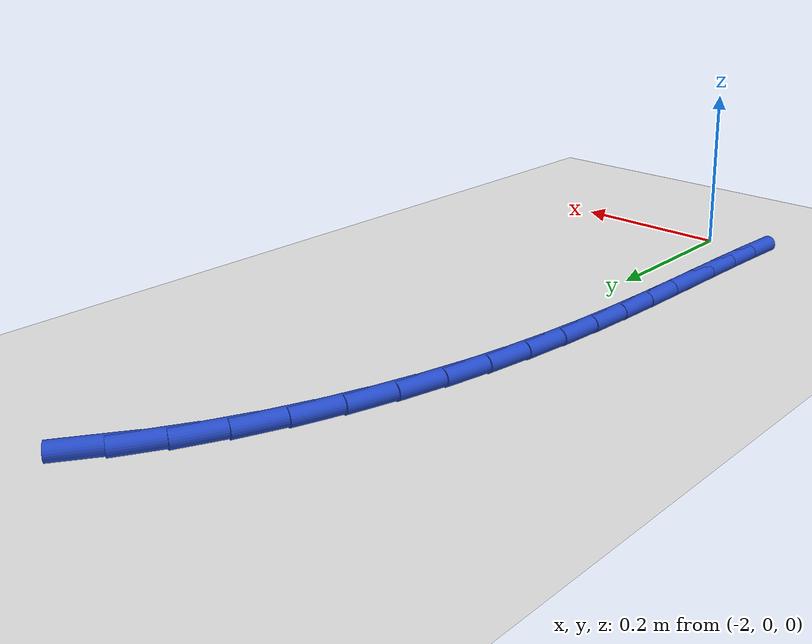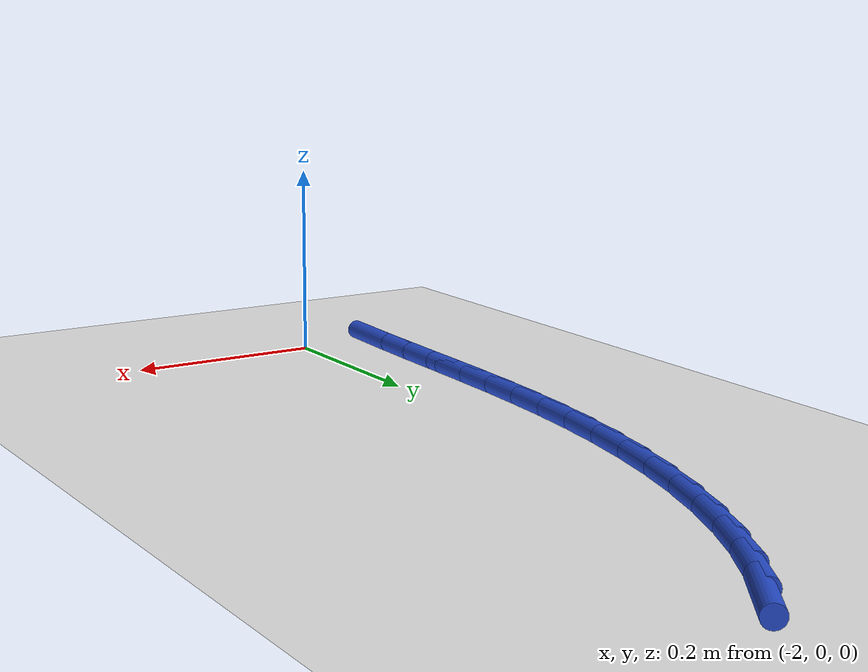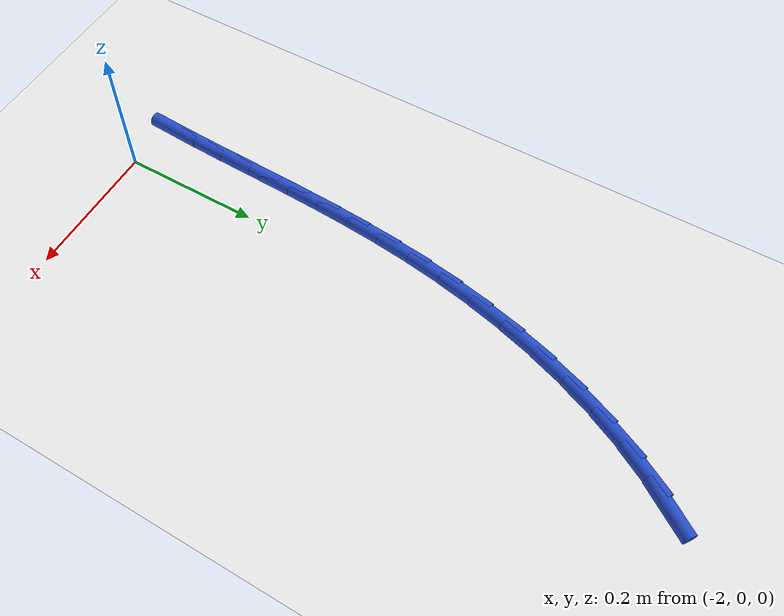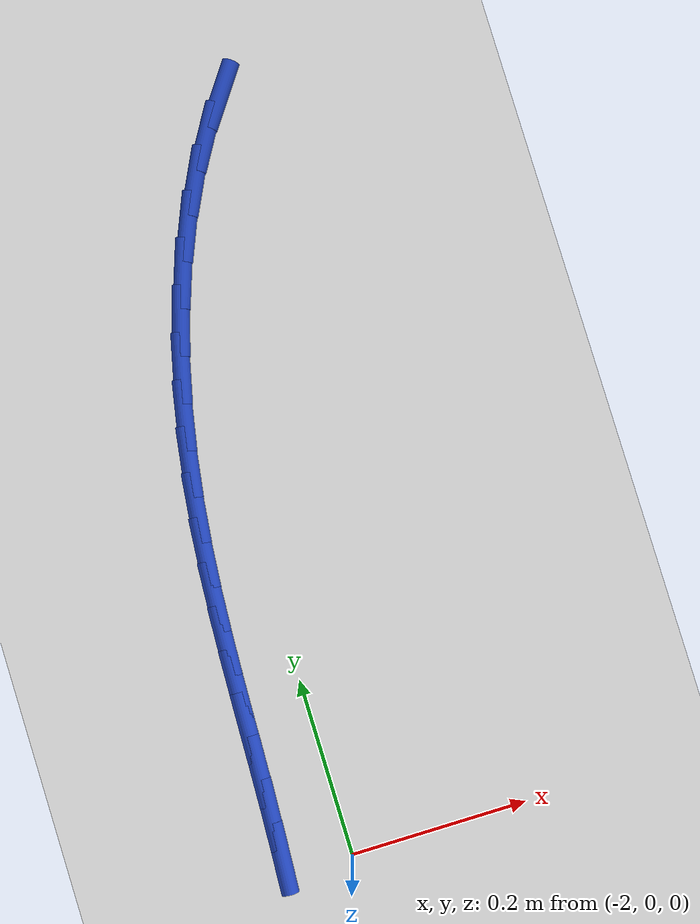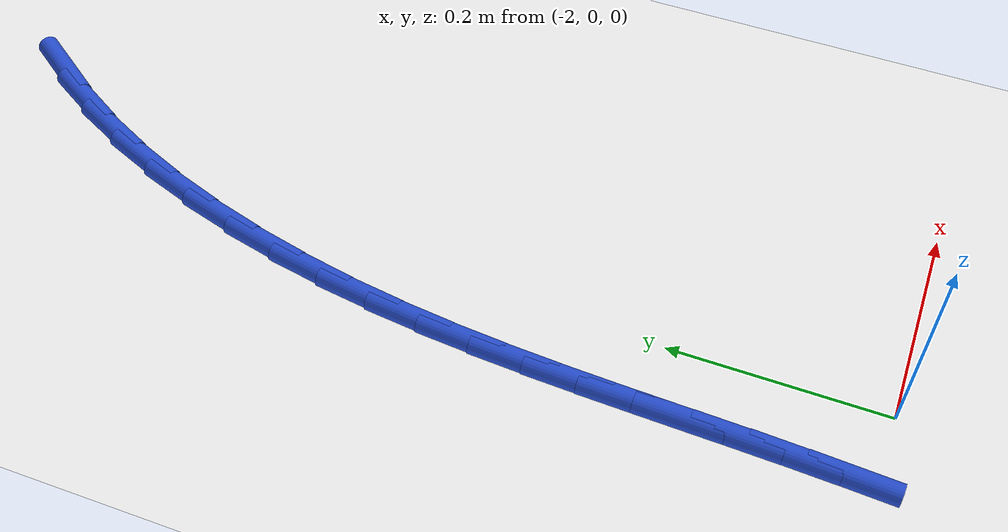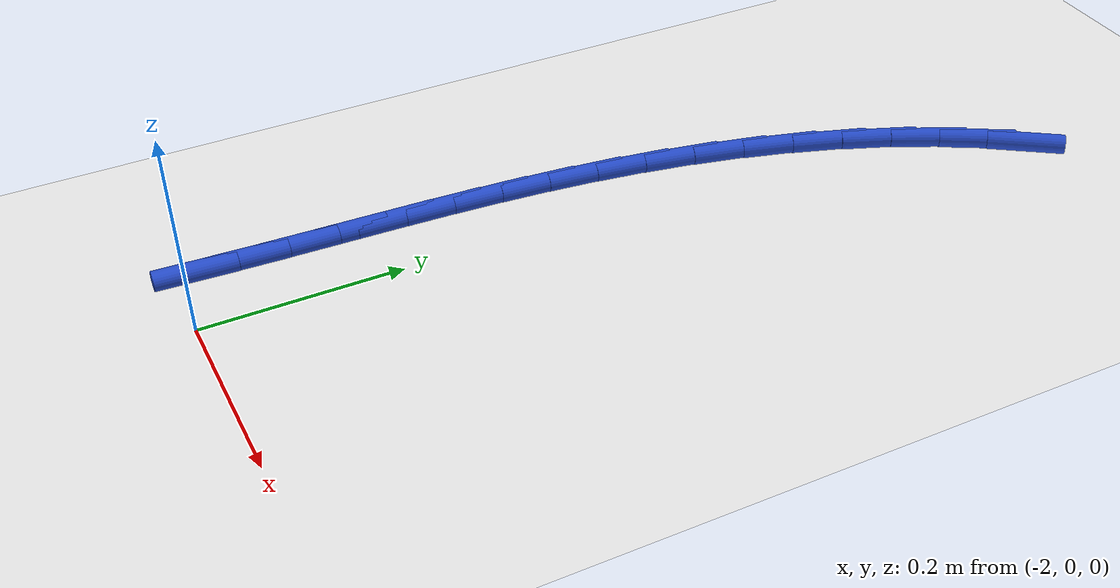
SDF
<sdf version="1.6">
 <world name="default">
  <model name="ground_plane">
   <static>1</static>
   <link name="link">
    <collision name="collision">
     <geometry><plane><normal>0 0 1</normal><size>100 100</size></plane></geometry>
     <surface><friction><ode><mu>100</mu><mu2>50</mu2></ode></friction></surface>
    </collision>
    <visual name="visual">
     <cast_shadows>0</cast_shadows>
     <geometry><plane><normal>0 0 1</normal><size>100 100</size></plane></geometry>
     <material>
      <script><uri>file://media/materials/scripts/gazebo.material</uri><name>Gazebo/WhiteGlow</name></script>
     </material>
    </visual>
   </link>
  </model>
  <model name="line">
   <link name="link_51">
    <pose>-1.8952875992482943 0.8510967188438283 0.01 0 1.57 0.9584471731648041</pose>
    <collision name="collision">
     <geometry><cylinder><radius>0.01</radius><length>0.08</length></cylinder></geometry>
    </collision>
    <visual name="visual">
     <material>
      <script><name>Gazebo/Blue</name><uri>file://media/materials/scripts/gazebo.material</uri></script>
     </material>
     <geometry><cylinder><radius>0.01</radius><length>0.08</length></cylinder></geometry>
    </visual>
   </link>
   <link name="link_52">
    <pose>-1.9240808682261983 0.8101052671861909 0.01 0 1.57 1.0423672182753734</pose>
    <collision name="collision">
     <geometry><cylinder><radius>0.01</radius><length>0.08</length></cylinder></geometry>
    </collision>
    <visual name="visual">
     <material>
      <script><name>Gazebo/Blue</name><uri>file://media/materials/scripts/gazebo.material</uri></script>
     </material>
     <geometry><cylinder><radius>0.01</radius><length>0.08</length></cylinder></geometry>
    </visual>
   </link>
   <link name="link_53">
    <pose>-1.9498663151922533 0.7659376423045526 0.01 0 1.57 1.1160397091845151</pose>
    <collision name="collision">
     <geometry><cylinder><radius>0.01</radius><length>0.08</length></cylinder></geometry>
    </collision>
    <visual name="visual">
     <material>
      <script><name>Gazebo/Blue</name><uri>file://media/materials/scripts/gazebo.material</uri></script>
     </material>
     <geometry><cylinder><radius>0.01</radius><length>0.08</length></cylinder></geometry>
    </visual>
   </link>
   <link name="link_54">
    <pose>-1.9727288115088355 0.7191778706933715 0.01 0 1.57 1.1811799230710796</pose>
    <collision name="collision">
     <geometry><cylinder><radius>0.01</radius><length>0.08</length></cylinder></geometry>
    </collision>
    <visual name="visual">
     <material>
      <script><name>Gazebo/Blue</name><uri>file://media/materials/scripts/gazebo.material</uri></script>
     </material>
     <geometry><cylinder><radius>0.01</radius><length>0.08</length></cylinder></geometry>
    </visual>
   </link>
   <link name="link_55">
    <pose>-1.9927532285383216 0.6704099788471052 0.01 0 1.57 1.2393846544069853</pose>
    <collision name="collision">
     <geometry><cylinder><radius>0.01</radius><length>0.08</length></cylinder></geometry>
    </collision>
    <visual name="visual">
     <material>
      <script><name>Gazebo/Blue</name><uri>file://media/materials/scripts/gazebo.material</uri></script>
     </material>
     <geometry><cylinder><radius>0.01</radius><length>0.08</length></cylinder></geometry>
    </visual>
   </link>
   <link name="link_56">
    <pose>-2.010024437643088 0.6202179932602125 0.01 0 1.57 1.2920929670523353</pose>
    <collision name="collision">
     <geometry><cylinder><radius>0.01</radius><length>0.08</length></cylinder></geometry>
    </collision>
    <visual name="visual">
     <material>
      <script><name>Gazebo/Blue</name><uri>file://media/materials/scripts/gazebo.material</uri></script>
     </material>
     <geometry><cylinder><radius>0.01</radius><length>0.08</length></cylinder></geometry>
    </visual>
   </link>
   <link name="link_57">
    <pose>-2.0246273101855112 0.569185940427151 0.01 0 1.57 1.3405996503066306</pose>
    <collision name="collision">
     <geometry><cylinder><radius>0.01</radius><length>0.08</length></cylinder></geometry>
    </collision>
    <visual name="visual">
     <material>
      <script><name>Gazebo/Blue</name><uri>file://media/materials/scripts/gazebo.material</uri></script>
     </material>
     <geometry><cylinder><radius>0.01</radius><length>0.08</length></cylinder></geometry>
    </visual>
   </link>
   <link name="link_58">
    <pose>-2.0366467175279683 0.5178978468423796 0.01 0 1.57 1.385920003829943</pose>
    <collision name="collision">
     <geometry><cylinder><radius>0.01</radius><length>0.08</length></cylinder></geometry>
    </collision>
    <visual name="visual">
     <material>
      <script><name>Gazebo/Blue</name><uri>file://media/materials/scripts/gazebo.material</uri></script>
     </material>
     <geometry><cylinder><radius>0.01</radius><length>0.08</length></cylinder></geometry>
    </visual>
   </link>
   <link name="link_59">
    <pose>-2.046184398417875 0.46689743359977226 0.01 0 1.57 1.4270324355167208</pose>
    <collision name="collision">
     <geometry><cylinder><radius>0.01</radius><length>0.08</length></cylinder></geometry>
    </collision>
    <visual name="visual">
     <material>
      <script><name>Gazebo/Blue</name><uri>file://media/materials/scripts/gazebo.material</uri></script>
     </material>
     <geometry><cylinder><radius>0.01</radius><length>0.08</length></cylinder></geometry>
    </visual>
   </link>
   <link name="link_60">
    <pose>-2.0535024731172316 0.4163451827092194 0.01 0 1.57 1.4625729472241138</pose>
    <collision name="collision">
     <geometry><cylinder><radius>0.01</radius><length>0.08</length></cylinder></geometry>
    </collision>
    <visual name="visual">
     <material>
      <script><name>Gazebo/Blue</name><uri>file://media/materials/scripts/gazebo.material</uri></script>
     </material>
     <geometry><cylinder><radius>0.01</radius><length>0.08</length></cylinder></geometry>
    </visual>
   </link>
   <link name="link_61">
    <pose>-2.058951770782168 0.36618960215470947 0.01 0 1.57 1.4920181506602441</pose>
    <collision name="collision">
     <geometry><cylinder><radius>0.01</radius><length>0.08</length></cylinder></geometry>
    </collision>
    <visual name="visual">
     <material>
      <script><name>Gazebo/Blue</name><uri>file://media/materials/scripts/gazebo.material</uri></script>
     </material>
     <geometry><cylinder><radius>0.01</radius><length>0.08</length></cylinder></geometry>
    </visual>
   </link>
   <link name="link_62">
    <pose>-2.0628840578135423 0.3163769603303837 0.01 0 1.57 1.5149809582141855</pose>
    <collision name="collision">
     <geometry><cylinder><radius>0.01</radius><length>0.08</length></cylinder></geometry>
    </collision>
    <visual name="visual">
     <material>
      <script><name>Gazebo/Blue</name><uri>file://media/materials/scripts/gazebo.material</uri></script>
     </material>
     <geometry><cylinder><radius>0.01</radius><length>0.08</length></cylinder></geometry>
    </visual>
   </link>
   <link name="link_63">
    <pose>-2.065651100612216 0.2668535256303827 0.01 0 1.57 1.531181318369974</pose>
    <collision name="collision">
     <geometry><cylinder><radius>0.01</radius><length>0.08</length></cylinder></geometry>
    </collision>
    <visual name="visual">
     <material>
      <script><name>Gazebo/Blue</name><uri>file://media/materials/scripts/gazebo.material</uri></script>
     </material>
     <geometry><cylinder><radius>0.01</radius><length>0.08</length></cylinder></geometry>
    </visual>
   </link>
   <link name="link_64">
    <pose>-2.0676046655790468 0.21756556644884792 0.01 0 1.57 1.5404255313347133</pose>
    <collision name="collision">
     <geometry><cylinder><radius>0.01</radius><length>0.08</length></cylinder></geometry>
    </collision>
    <visual name="visual">
     <material>
      <script><name>Gazebo/Blue</name><uri>file://media/materials/scripts/gazebo.material</uri></script>
     </material>
     <geometry><cylinder><radius>0.01</radius><length>0.08</length></cylinder></geometry>
    </visual>
   </link>
   <link name="link_65">
    <pose>-2.069096519114894 0.16845935117992009 0.01 0 1.57 1.5425890448365747</pose>
    <collision name="collision">
     <geometry><cylinder><radius>0.01</radius><length>0.08</length></cylinder></geometry>
    </collision>
    <visual name="visual">
     <material>
      <script><name>Gazebo/Blue</name><uri>file://media/materials/scripts/gazebo.material</uri></script>
     </material>
     <geometry><cylinder><radius>0.01</radius><length>0.08</length></cylinder></geometry>
    </visual>
   </link>
   <link name="link_66">
    <pose>-2.0704784276206176 0.11948114821773959 0.01 0 1.57 1.5376060727659269</pose>
    <collision name="collision">
     <geometry><cylinder><radius>0.01</radius><length>0.08</length></cylinder></geometry>
    </collision>
    <visual name="visual">
     <material>
      <script><name>Gazebo/Blue</name><uri>file://media/materials/scripts/gazebo.material</uri></script>
     </material>
     <geometry><cylinder><radius>0.01</radius><length>0.08</length></cylinder></geometry>
    </visual>
   </link>
   <link name="link_67">
    <pose>-2.072102157497076 0.07057722595644829 0.01 0 1.57 1.5265348261270975</pose>
    <collision name="collision">
     <geometry><cylinder><radius>0.01</radius><length>0.08</length></cylinder></geometry>
    </collision>
    <visual name="visual">
     <material>
      <script><name>Gazebo/Blue</name><uri>file://media/materials/scripts/gazebo.material</uri></script>
     </material>
     <geometry><cylinder><radius>0.01</radius><length>0.08</length></cylinder></geometry>
    </visual>
   </link>
   <link name="link_68">
    <pose>-2.0742671745278836 0.021694946790480542 0.01 0 1.57 1.5171356032590597</pose>
    <collision name="collision">
     <geometry><cylinder><radius>0.01</radius><length>0.08</length></cylinder></geometry>
    </collision>
    <visual name="visual">
     <material>
      <script><name>Gazebo/Blue</name><uri>file://media/materials/scripts/gazebo.material</uri></script>
     </material>
     <geometry><cylinder><radius>0.01</radius><length>0.08</length></cylinder></geometry>
    </visual>
   </link>
  </model>
 </world>
</sdf>
